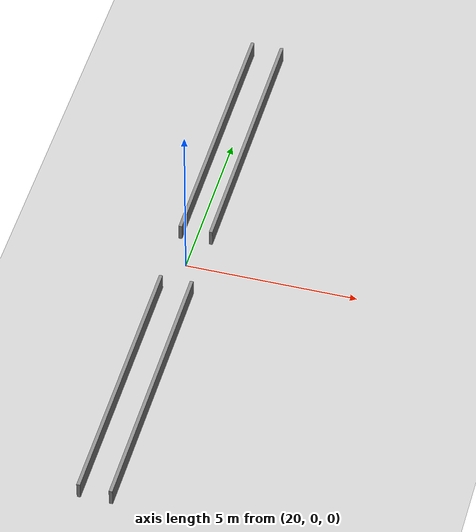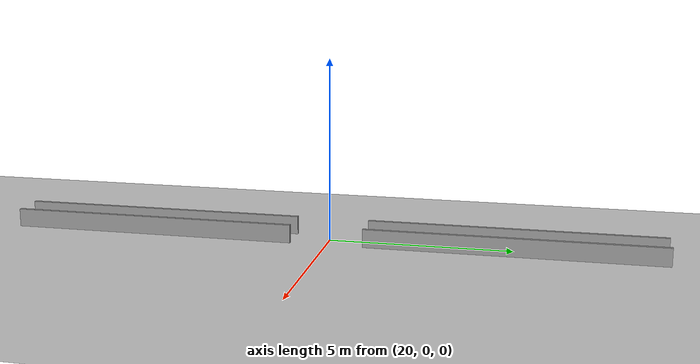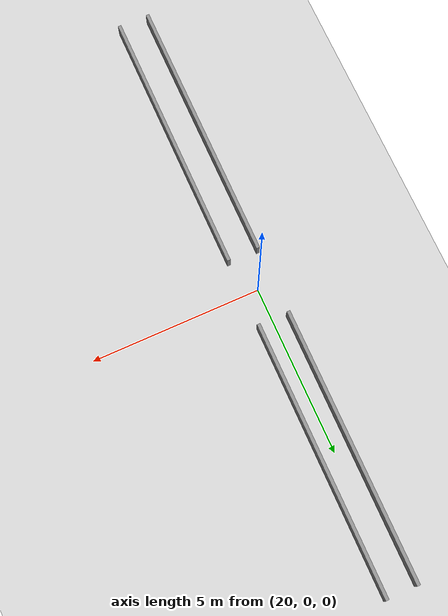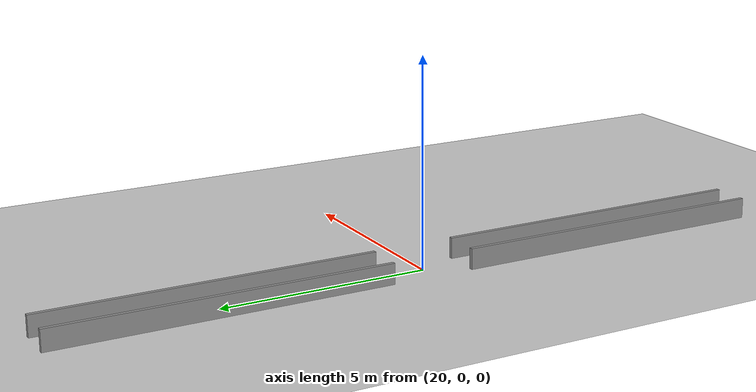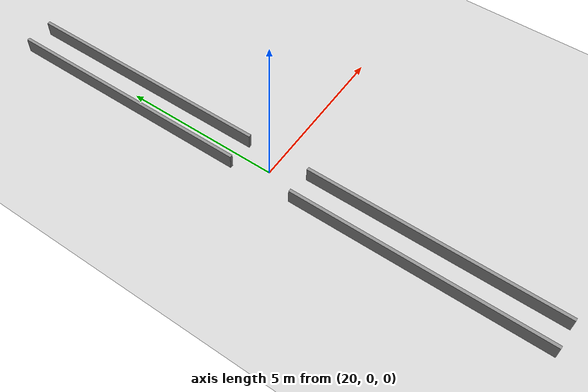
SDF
<?xml version="1.0" ?>
<sdf version="1.6">
  <world name="default">
    <include>
      <uri>model://ground_plane</uri>
    </include>
    <include>
      <uri>model://sun</uri>
    </include>

    <physics type="ode">
      <real_time_update_rate>1000.0</real_time_update_rate>
      <max_step_size>0.001</max_step_size>
      <real_time_factor>1</real_time_factor>
      <ode>
        <solver>
          <type>quick</type>
          <iters>150</iters>
          <precon_iters>0</precon_iters>
          <sor>1.400000</sor>
          <use_dynamic_moi_rescaling>1</use_dynamic_moi_rescaling>
        </solver>
        <constraints>
          <cfm>0.00001</cfm>
          <erp>0.2</erp>
          <contact_max_correcting_vel>2000.000000</contact_max_correcting_vel>
          <contact_surface_layer>0.01000</contact_surface_layer>
        </constraints>
      </ode>
    </physics>

    <scene>
      <ambient>0.4 0.4 0.4 1</ambient>
      <background>0.7 0.7 0.7 1</background>
      <shadows>false</shadows>
    </scene>

    <gui fullscreen="0">
      <camera name="user_camera">
        <pose>15 -25 25 0 0.7 1.57</pose>
        <view_controller>orbit</view_controller>
      </camera>
    </gui>

        <model name="wall_cf_west">
      <static>true</static>
      <pose>19.55 5 0.25 0 0 0</pose>
      <link name="link">
        <collision name="collision">
          <geometry><box><size>0.1 8 0.5</size></box></geometry>
        </collision>
        <visual name="visual">
          <geometry><box><size>0.1 8 0.5</size></box></geometry>
          <material><ambient>0.55 0.55 0.55 1</ambient></material>
        </visual>
      </link>
    </model>
    <model name="wall_cf_east">
      <static>true</static>
      <pose>20.45 5 0.25 0 0 0</pose>
      <link name="link">
        <collision name="collision">
          <geometry><box><size>0.1 8 0.5</size></box></geometry>
        </collision>
        <visual name="visual">
          <geometry><box><size>0.1 8 0.5</size></box></geometry>
          <material><ambient>0.55 0.55 0.55 1</ambient></material>
        </visual>
      </link>
    </model>

        <model name="wall_ch_west">
      <static>true</static>
      <pose>19.55 -5 0.25 0 0 0</pose>
      <link name="link">
        <collision name="collision">
          <geometry><box><size>0.1 8 0.5</size></box></geometry>
        </collision>
        <visual name="visual">
          <geometry><box><size>0.1 8 0.5</size></box></geometry>
          <material><ambient>0.55 0.55 0.55 1</ambient></material>
        </visual>
      </link>
    </model>
    <model name="wall_ch_east">
      <static>true</static>
      <pose>20.45 -5 0.25 0 0 0</pose>
      <link name="link">
        <collision name="collision">
          <geometry><box><size>0.1 8 0.5</size></box></geometry>
        </collision>
        <visual name="visual">
          <geometry><box><size>0.1 8 0.5</size></box></geometry>
          <material><ambient>0.55 0.55 0.55 1</ambient></material>
        </visual>
      </link>
    </model>
  </world>
</sdf>
